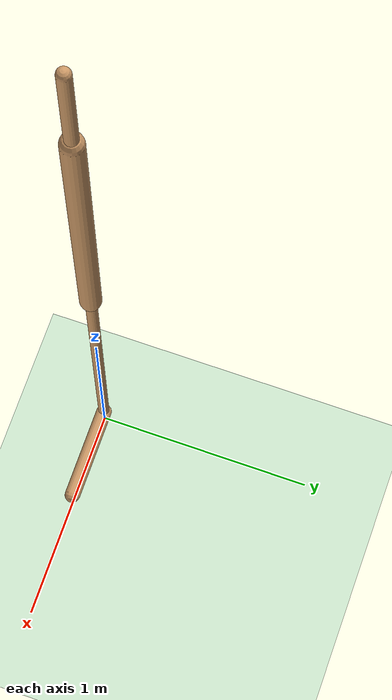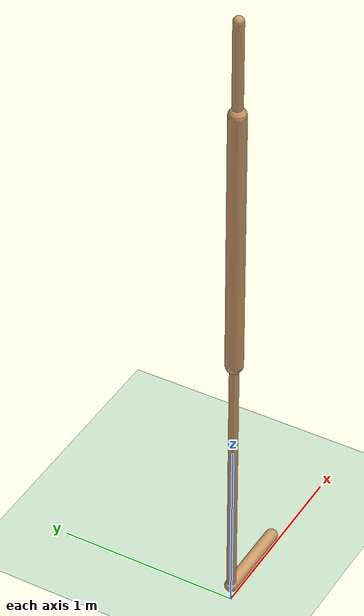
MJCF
<mujoco model="walker2d">
  <compiler angle="degree" inertiafromgeom="true" />
  <default>
    <joint armature="0.01" damping=".1" limited="true" />
    <geom conaffinity="0" condim="3" contype="1" density="1000" friction=".7 .1 .1" rgba="0.8 0.6 .4 1" />
  </default>
  <option integrator="RK4" timestep="0.002" />
  <worldbody>
    <light cutoff="100" diffuse="1 1 1" dir="-0 0 -1.3" directional="true" exponent="1" pos="0 0 1.3" specular=".1 .1 .1" />
    <geom conaffinity="1" condim="3" name="floor" pos="0 0 0" rgba="0.8 0.9 0.8 1" size="40 40 40" type="plane" material="MatPlane" />
    <body name="torso" pos="0 0 3.2885274648666383">
      <camera name="track" mode="trackcom" pos="0 -5 -1.25" xyaxes="1 0 0 0 0 1" />
      <joint armature="0" axis="1 0 0" damping="0" limited="false" name="rootx" pos="0 0 -1.25" stiffness="0" type="slide" />
      <joint armature="0" axis="0 0 1" damping="0" limited="false" name="rootz" pos="0 0 -1.25" ref="1.25" stiffness="0" type="slide" />
      <joint armature="0" axis="0 1 0" damping="0" limited="false" name="rooty" pos="0 0 0" stiffness="0" type="hinge" />
      <geom friction="0.9" name="torso_geom" size="0.027743808925151825 0.251775860786438" type="capsule" />
      <body name="thigh" pos="0 0 -0.251775860786438">
        <joint axis="0 -1 0" name="thigh_joint" pos="0 0 0" range="-150 0" type="hinge" />
        <site name="torso_thigh_site" pos="0 0 0" size="0.01" type="sphere" rgba="1 0 0 0.5" />
        <geom friction="0.9" pos="0 0 -0.7308672666549683" name="thigh_geom" size="0.0469379648566246 0.7308672666549683" type="capsule" />
        <body name="leg" pos="0 0 -2.1992430686950684">
          <joint axis="0 -1 0" name="leg_joint" pos="0 0 0.7375085353851318" range="-150 0" type="hinge" />
          <site name="thigh_leg_site" pos="0 0 0.25" size="0.01" type="sphere" rgba="1 0 0 0.5" />
          <geom friction="0.9" name="leg_geom" size="0.02524612471461296 0.7375085353851318" type="capsule" />
          <body name="foot" pos="0.43175333738327026 0 -0.8375085353851318">
            <joint axis="0 -1 0" name="foot_joint" pos="-0.43175333738327026 0 0.1" range="-45 45" type="hinge" />
            <site name="leg_foot_site" pos="-0.2 0 0.1" size="0.01" type="sphere" rgba="1 0 0 0.5" />
            <geom friction="0.9" pos="-0.21587666869163513 0 0.1" quat="0.70710678118654757 0 -0.70710678118654746 0" name="foot_geom" size="0.03593551740050316 0.21587666869163513" type="capsule" />
          </body>
        </body>
      </body>

      <body name="thigh_left" pos="0 0 -0.251775860786438">
        <joint axis="0 -1 0" name="thigh_left_joint" pos="0 0 0" range="-150 0" type="hinge" />
        <site name="torso_thigh_left_site" pos="0 0 0" size="0.01" type="sphere" rgba="1 0 0 0.5" />
        <geom friction="0.9" name="thigh_left_geom" rgba=".7 .3 .6 1" size="0.0469379648566246 0.7308672666549683" pos="0 0 -0.7308672666549683" type="capsule" />
        <body name="leg_left" pos="0 0 -2.1992430686950684">
          <joint axis="0 -1 0" name="leg_left_joint" pos="0 0 0.7375085353851318" range="-150 0" type="hinge" />
          <site name="thigh_leg_left_site" pos="0 0 0.25" size="0.01" type="sphere" rgba="1 0 0 0.5" />
          <geom friction="0.9" name="leg_left_geom" rgba=".7 .3 .6 1" size="0.02524612471461296 0.7375085353851318" type="capsule" />
          <body name="foot_left" pos="0.43175333738327026 0 -0.8375085353851318">
            <joint axis="0 -1 0" name="foot_left_joint" pos="-0.43175333738327026 0 0.1" range="-45 45" type="hinge" />
            <site name="leg_foot_left_site" pos="-0.2 0 0.1" size="0.01" type="sphere" rgba="1 0 0 0.5" />
            <geom friction="1.9" name="foot_left_geom" rgba=".7 .3 .6 1" size="0.03593551740050316 0.21587666869163513" pos="-0.21587666869163513 0 0.1" type="capsule" quat="0.70710678118654757 0 -0.70710678118654746 0" />
          </body>
        </body>
      </body>
    </body>
  </worldbody>
  <actuator>

    <motor ctrllimited="true" ctrlrange="-1.0 1.0" gear="286.2625237061293" joint="thigh_joint" />
    <motor ctrllimited="true" ctrlrange="-1.0 1.0" gear="117.5158662091853" joint="leg_joint" />
    <motor ctrllimited="true" ctrlrange="-1.0 1.0" gear="77.43744429151997" joint="foot_joint" />
    <motor ctrllimited="true" ctrlrange="-1.0 1.0" gear="286.2625237061293" joint="thigh_left_joint" />
    <motor ctrllimited="true" ctrlrange="-1.0 1.0" gear="117.5158662091853" joint="leg_left_joint" />
    <motor ctrllimited="true" ctrlrange="-1.0 1.0" gear="77.43744429151997" joint="foot_left_joint" />

  </actuator>
    <asset>
        <texture type="skybox" builtin="gradient" rgb1=".4 .5 .6" rgb2="0 0 0" width="100" height="100" />
        <texture builtin="flat" height="1278" mark="cross" markrgb="1 1 1" name="texgeom" random="0.01" rgb1="0.8 0.6 0.4" rgb2="0.8 0.6 0.4" type="cube" width="127" />
        <texture builtin="checker" height="100" name="texplane" rgb1="0 0 0" rgb2="0.8 0.8 0.8" type="2d" width="100" />
        <material name="MatPlane" reflectance="0.5" shininess="1" specular="1" texrepeat="60 60" texture="texplane" />
        <material name="geom" texture="texgeom" texuniform="true" />
    </asset>

  <sensor>
    <force site="torso_thigh_site" name="torso_thigh_sensor" />
    <force site="thigh_leg_site" name="thigh_leg_sensor" />
    <force site="leg_foot_site" name="leg_foot_sensor" />
    <force site="torso_thigh_left_site" name="torso_thigh_left_sensor" />
    <force site="thigh_leg_left_site" name="thigh_leg_left_sensor" />
    <force site="leg_foot_left_site" name="leg_foot_left_sensor" />
  </sensor>
</mujoco>
